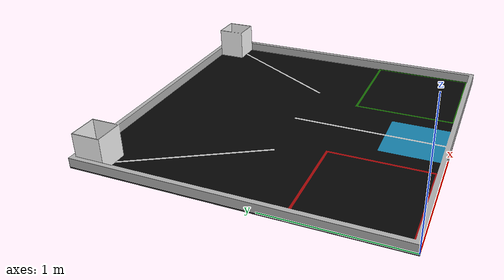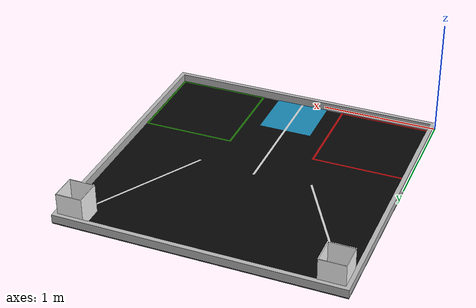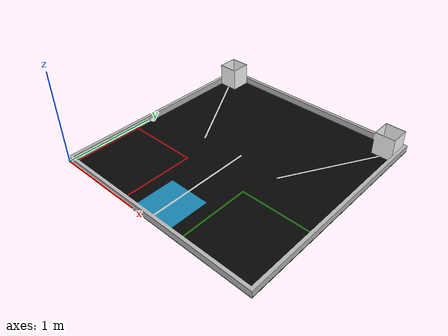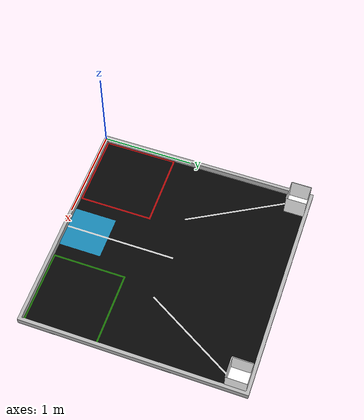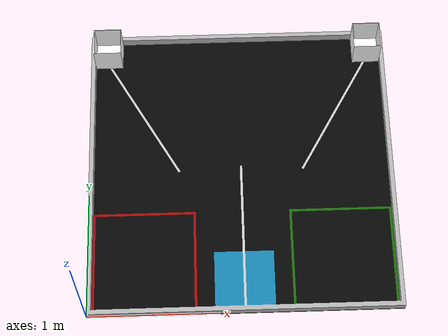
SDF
<?xml version="1.0" ?>
<sdf version="1.5">
  <world name="default">
    <scene>
      <shadows>0</shadows>
    </scene>

    <include>
      <uri>model://sun</uri>
    </include>

    <include>
      <uri>model://megabot_arena</uri>
    </include>

  </world>
</sdf>

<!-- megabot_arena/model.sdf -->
<sdf version="1.5">
    <model name="arena_mesh">
      <!-- Location of arena in xyz coordinate system -->
      <pose>1.2 1.2 -0.005 0 0 1.570796327</pose>
      <static>true</static>

      <link name="body">
        <collision name="collision">

          <geometry>
            <mesh><uri>model://megabot_arena/meshes/arena.dae</uri></mesh>
          </geometry>

        </collision>

        <visual name="visual">
          <geometry>
            <mesh><uri>model://megabot_arena/meshes/arena.dae</uri></mesh>
          </geometry>
        </visual>

      </link>

      <link name="floor">
        <pose> 0 0 0.005 0 0 0 </pose>

        <collision name="collision">

          <geometry>
            <plane>
              <normal>0 0 1</normal>
              <size>2.4 2.4</size>
            </plane>
          </geometry>

        </collision>

      </link>
    </model>
</sdf>
